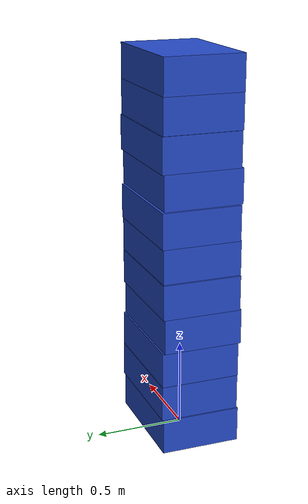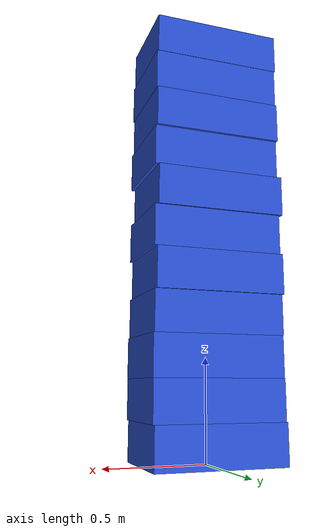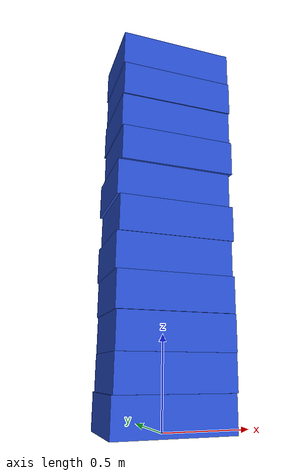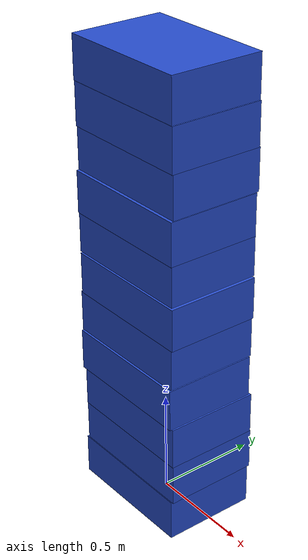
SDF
<?xml version="1.0" encoding="UTF-8"?>
<sdf version='1.4'>
   <model name="baggage_B_x11">
      <model name="baggage_B_0">
         <static>true</static>
         <link name="link">
               <collision name="collision">
                  <geometry>
                     <box>
                        <size>0.65 0.45 0.2</size>
                     </box>
                  </geometry>
               </collision>
               <visual name="visual">
                  <geometry>
                     <box>
                        <size>0.65 0.45 0.2</size>
                     </box>
                  </geometry>
                  <material>
                     <script>
                        <uri>file://media/materials/scripts/gazebo.material</uri>
                        <name>Gazebo/Blue</name>
                     </script>
                  </material>
               </visual>
            </link>
            <pose frame=''>0 0 0.1 0 0 0</pose>
      </model>
      <model name="baggage_B_1">
         <static>true</static>
         <link name="link">
               <collision name="collision">
                  <geometry>
                     <box>
                        <size>0.65 0.45 0.2</size>
                     </box>
                  </geometry>
               </collision>
               <visual name="visual">
                  <geometry>
                     <box>
                        <size>0.65 0.45 0.2</size>
                     </box>
                  </geometry>
                  <material>
                     <script>
                        <uri>file://media/materials/scripts/gazebo.material</uri>
                        <name>Gazebo/Blue</name>
                     </script>
                  </material>
               </visual>
            </link>
            <pose frame=''>0.0088 0.0038 0.3 0 0 0</pose>
      </model>
      <model name="baggage_B_2">
         <static>true</static>
         <link name="link">
               <collision name="collision">
                  <geometry>
                     <box>
                        <size>0.65 0.45 0.2</size>
                     </box>
                  </geometry>
               </collision>
               <visual name="visual">
                  <geometry>
                     <box>
                        <size>0.65 0.45 0.2</size>
                     </box>
                  </geometry>
                  <material>
                     <script>
                        <uri>file://media/materials/scripts/gazebo.material</uri>
                        <name>Gazebo/Blue</name>
                     </script>
                  </material>
               </visual>
            </link>
            <pose frame=''>0.0099 0.0013 0.5 0 0 0</pose>
      </model>
      <model name="baggage_B_3">
         <static>true</static>
         <link name="link">
               <collision name="collision">
                  <geometry>
                     <box>
                        <size>0.65 0.45 0.2</size>
                     </box>
                  </geometry>
               </collision>
               <visual name="visual">
                  <geometry>
                     <box>
                        <size>0.65 0.45 0.2</size>
                     </box>
                  </geometry>
                  <material>
                     <script>
                        <uri>file://media/materials/scripts/gazebo.material</uri>
                        <name>Gazebo/Blue</name>
                     </script>
                  </material>
               </visual>
            </link>
            <pose frame=''>0.0022 -0.0084 0.7 0 0 0</pose>
      </model>
      <model name="baggage_B_4">
         <static>true</static>
         <link name="link">
               <collision name="collision">
                  <geometry>
                     <box>
                        <size>0.65 0.45 0.2</size>
                     </box>
                  </geometry>
               </collision>
               <visual name="visual">
                  <geometry>
                     <box>
                        <size>0.65 0.45 0.2</size>
                     </box>
                  </geometry>
                  <material>
                     <script>
                        <uri>file://media/materials/scripts/gazebo.material</uri>
                        <name>Gazebo/Blue</name>
                     </script>
                  </material>
               </visual>
            </link>
            <pose frame=''>-0.0036 0.0023 0.9 0 0 0</pose>
      </model>
      <model name="baggage_B_5">
         <static>true</static>
         <link name="link">
               <collision name="collision">
                  <geometry>
                     <box>
                        <size>0.65 0.45 0.2</size>
                     </box>
                  </geometry>
               </collision>
               <visual name="visual">
                  <geometry>
                     <box>
                        <size>0.65 0.45 0.2</size>
                     </box>
                  </geometry>
                  <material>
                     <script>
                        <uri>file://media/materials/scripts/gazebo.material</uri>
                        <name>Gazebo/Blue</name>
                     </script>
                  </material>
               </visual>
            </link>
            <pose frame=''>0.0085 -0.0016 1.1 0 0 0</pose>
      </model>
      <model name="baggage_B_6">
         <static>true</static>
         <link name="link">
               <collision name="collision">
                  <geometry>
                     <box>
                        <size>0.65 0.45 0.2</size>
                     </box>
                  </geometry>
               </collision>
               <visual name="visual">
                  <geometry>
                     <box>
                        <size>0.65 0.45 0.2</size>
                     </box>
                  </geometry>
                  <material>
                     <script>
                        <uri>file://media/materials/scripts/gazebo.material</uri>
                        <name>Gazebo/Blue</name>
                     </script>
                  </material>
               </visual>
            </link>
            <pose frame=''>-0.0066 0.0086 1.3 0 0 0</pose>
      </model>
      <model name="baggage_B_7">
         <static>true</static>
         <link name="link">
               <collision name="collision">
                  <geometry>
                     <box>
                        <size>0.65 0.45 0.2</size>
                     </box>
                  </geometry>
               </collision>
               <visual name="visual">
                  <geometry>
                     <box>
                        <size>0.65 0.45 0.2</size>
                     </box>
                  </geometry>
                  <material>
                     <script>
                        <uri>file://media/materials/scripts/gazebo.material</uri>
                        <name>Gazebo/Blue</name>
                     </script>
                  </material>
               </visual>
            </link>
            <pose frame=''>0.0096 -0.0061 1.5 0 0 0</pose>
      </model>
      <model name="baggage_B_8">
         <static>true</static>
         <link name="link">
               <collision name="collision">
                  <geometry>
                     <box>
                        <size>0.65 0.45 0.2</size>
                     </box>
                  </geometry>
               </collision>
               <visual name="visual">
                  <geometry>
                     <box>
                        <size>0.65 0.45 0.2</size>
                     </box>
                  </geometry>
                  <material>
                     <script>
                        <uri>file://media/materials/scripts/gazebo.material</uri>
                        <name>Gazebo/Blue</name>
                     </script>
                  </material>
               </visual>
            </link>
            <pose frame=''>0.0048 0.0081 1.7 0 0 0</pose>
      </model>
      <model name="baggage_B_9">
         <static>true</static>
         <link name="link">
               <collision name="collision">
                  <geometry>
                     <box>
                        <size>0.65 0.45 0.2</size>
                     </box>
                  </geometry>
               </collision>
               <visual name="visual">
                  <geometry>
                     <box>
                        <size>0.65 0.45 0.2</size>
                     </box>
                  </geometry>
                  <material>
                     <script>
                        <uri>file://media/materials/scripts/gazebo.material</uri>
                        <name>Gazebo/Blue</name>
                     </script>
                  </material>
               </visual>
            </link>
            <pose frame=''>0.0090 0.0009 1.9 0 0 0</pose>
      </model>
      <model name="baggage_B_10">
         <static>true</static>
         <link name="link">
               <collision name="collision">
                  <geometry>
                     <box>
                        <size>0.65 0.45 0.2</size>
                     </box>
                  </geometry>
               </collision>
               <visual name="visual">
                  <geometry>
                     <box>
                        <size>0.65 0.45 0.2</size>
                     </box>
                  </geometry>
                  <material>
                     <script>
                        <uri>file://media/materials/scripts/gazebo.material</uri>
                        <name>Gazebo/Blue</name>
                     </script>
                  </material>
               </visual>
            </link>
            <pose frame=''>0.0028 0.0021 2.1 0 0 0</pose>
      </model>
   </model>
</sdf>
